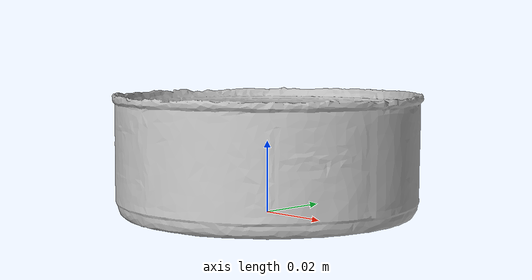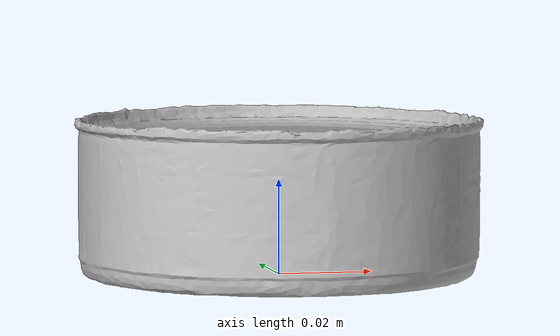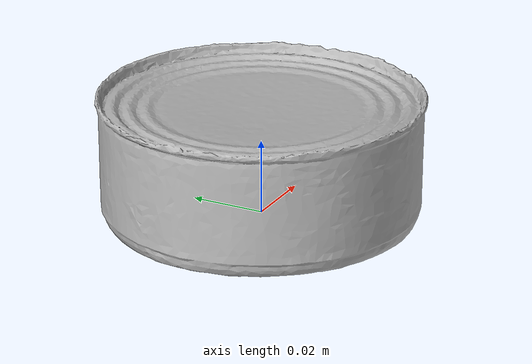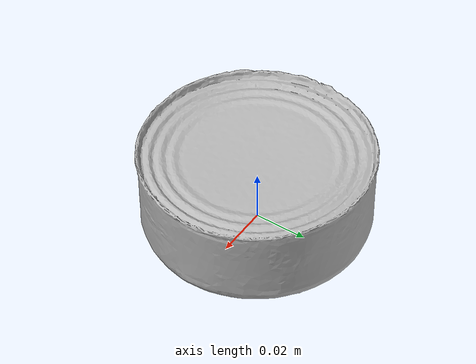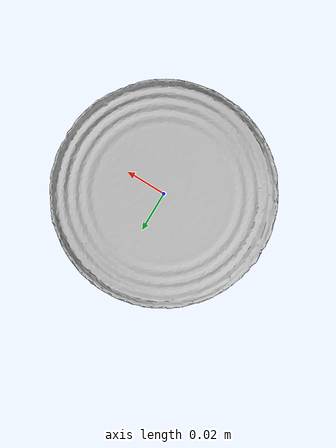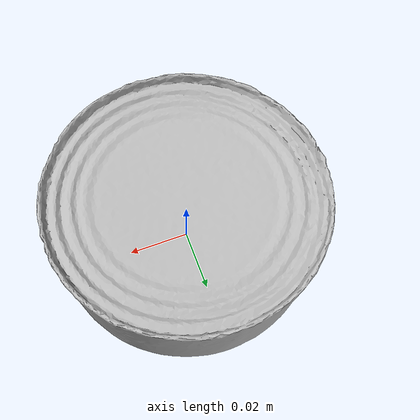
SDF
<?xml version="1.0" ?>
<sdf version='1.8'>
  <model name='ycb_007_tuna_fish_can'>
    <link name='body'>
      <inertial>
        <mass>0.171</mass>
        <pose>0.000136674765 -6.3594463e-06 0.0160605082 0 0 0</pose>
        <inertia>
          <ixx>8.91004228738e-05</ixx>
          <ixy>2.41024488497e-08</ixy>
          <ixz>1.38449688739e-08</ixz>
          <iyy>8.91950354708e-05</iyy>
          <iyz>2.98356613544e-09</iyz>
          <izz>0.000156203657419</izz>
        </inertia>
      </inertial>
      <visual name='ycb_007_tuna_fish_can_visual'>
        <pose>0.026133 0.022134 0.003071 0 0 0</pose>
        <geometry>
          <mesh>
            <uri>model://ycb_007_tuna_fish_can/meshes/textured.dae</uri>
          </mesh>
        </geometry>
      </visual>
      <collision name='ycb_007_tuna_fish_can_collision'>
        <pose>0.026133 0.022134 0.003071 0 0 0</pose>
        <geometry>
          <mesh>
            <uri>model://ycb_007_tuna_fish_can/meshes/nontextured.stl</uri>
          </mesh>
        </geometry>
        <max_contacts>10</max_contacts>
        <surface>
          <contact>
            <ode>
              <kp>1e15</kp>
              <kd>1e13</kd>
            </ode>
          </contact>
        </surface>
      </collision>
    </link>
  </model>
</sdf>
